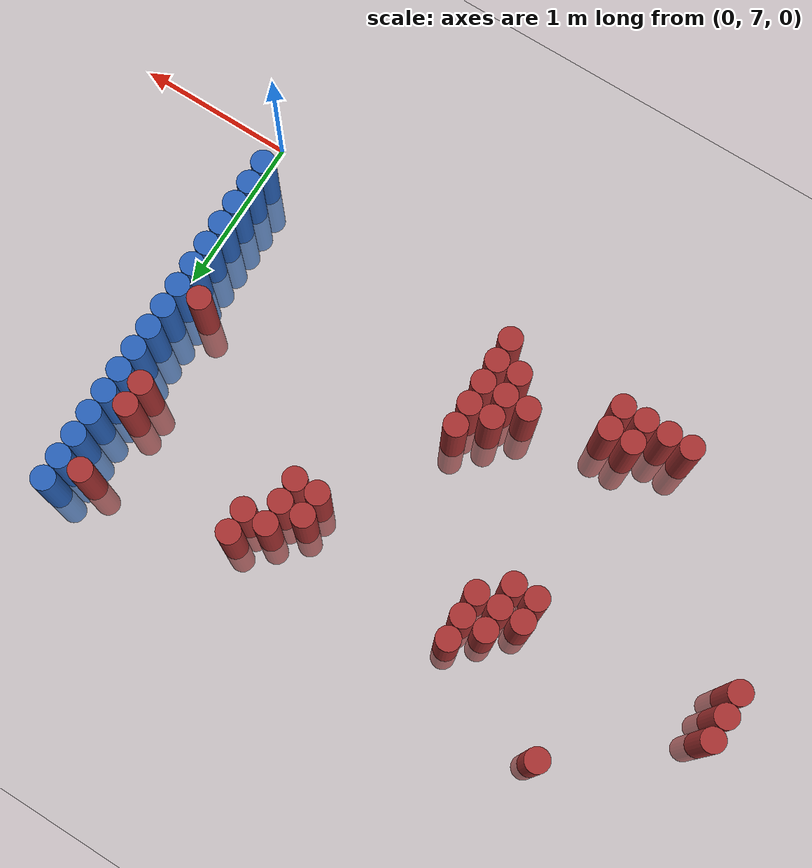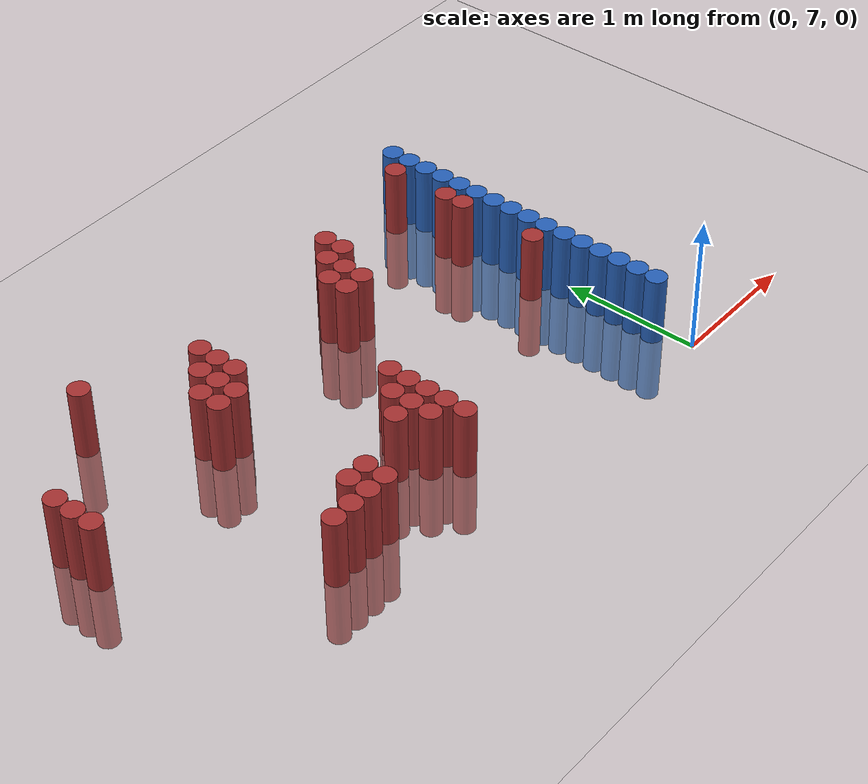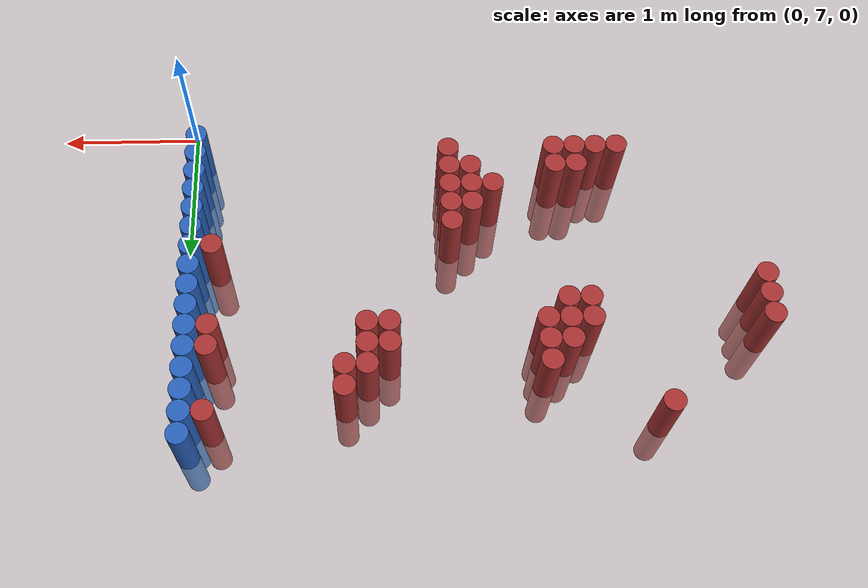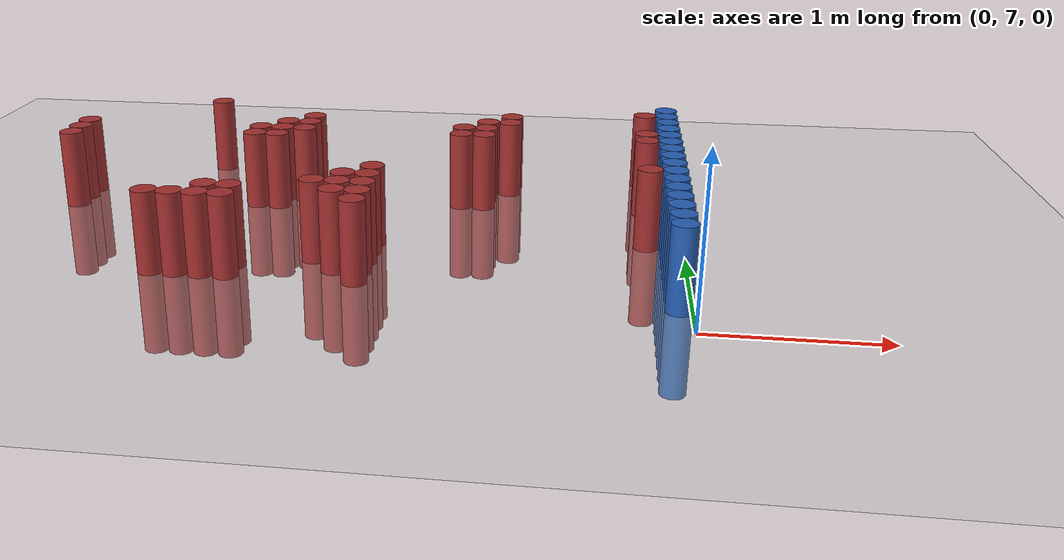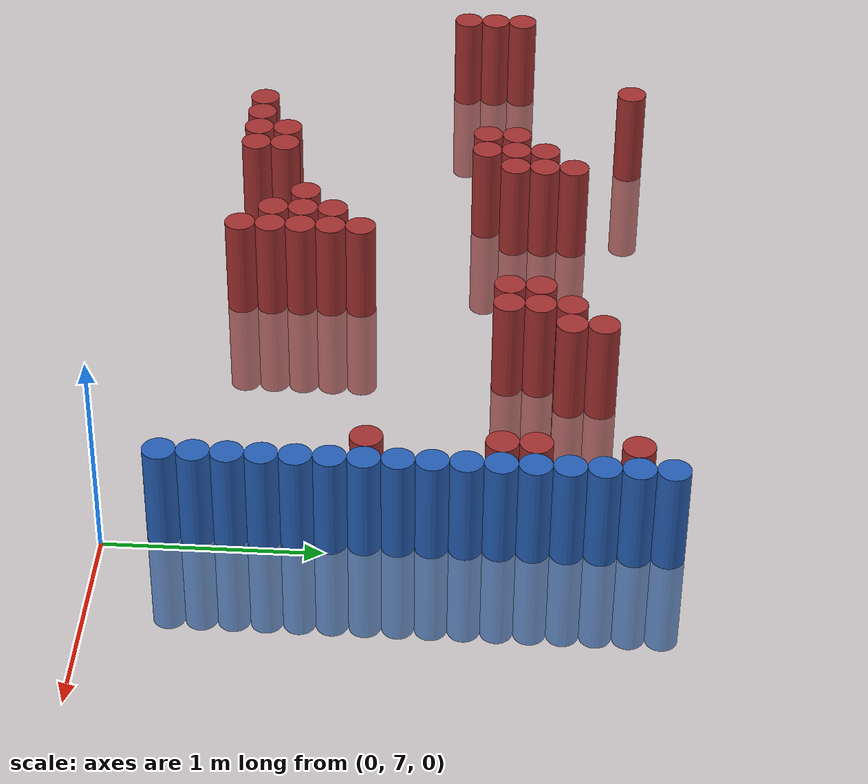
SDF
<sdf version="1.6">
 <world name="world_182">
  <model name="ground_plane">
   <static>1</static>
   <link name="link">
    <collision name="collision">
     <geometry><plane><normal>0 0 1</normal><size>100 100</size></plane></geometry>
     <surface><friction><ode><mu>100</mu><mu2>50</mu2></ode></friction></surface>
    </collision>
    <visual name="visual">
     <cast_shadows>0</cast_shadows>
     <geometry><plane><normal>0 0 1</normal><size>100 100</size></plane></geometry>
     <material>
      <script><uri>file://media/materials/scripts/gazebo.material</uri><name>Gazebo/Grey</name></script>
     </material>
    </visual>
   </link>
  </model>
  <model name="unit_cylinder_160">
   <static>1</static>
   <pose>-3.975000 8.475000 0.000000 0.000000 0.000000 0.000000</pose>
   <link name="link">
    <inertial>
     <mass>1</mass>
     <inertia><ixx>0.145833</ixx><ixy>0</ixy><ixz>0</ixz><iyy>0.145833</iyy><iyz>0</iyz><izz>0.125</izz></inertia>
    </inertial>
    <collision name="collision">
     <geometry><cylinder><radius>0.075000</radius><length>1</length></cylinder></geometry>
    </collision>
    <visual name="visual">
     <geometry><cylinder><radius>0.075000</radius><length>1</length></cylinder></geometry>
     <material>
      <ambient>0.648000 0.192000 0.192000 1</ambient>
      <diffuse>0.648000 0.192000 0.192000 1</diffuse>
     </material>
     <material>
      <script><name>Gazebo/Grey</name><uri>file://media/materials/scripts/gazebo.material</uri></script>
     </material>
    </visual>
   </link>
  </model>
  <model name="unit_cylinder_161">
   <static>1</static>
   <pose>-3.975000 8.625000 0.000000 0.000000 0.000000 0.000000</pose>
   <link name="link">
    <inertial>
     <mass>1</mass>
     <inertia><ixx>0.145833</ixx><ixy>0</ixy><ixz>0</ixz><iyy>0.145833</iyy><iyz>0</iyz><izz>0.125</izz></inertia>
    </inertial>
    <collision name="collision">
     <geometry><cylinder><radius>0.075000</radius><length>1</length></cylinder></geometry>
    </collision>
    <visual name="visual">
     <geometry><cylinder><radius>0.075000</radius><length>1</length></cylinder></geometry>
     <material>
      <ambient>0.648000 0.192000 0.192000 1</ambient>
      <diffuse>0.648000 0.192000 0.192000 1</diffuse>
     </material>
     <material>
      <script><name>Gazebo/Grey</name><uri>file://media/materials/scripts/gazebo.material</uri></script>
     </material>
    </visual>
   </link>
  </model>
  <model name="unit_cylinder_162">
   <static>1</static>
   <pose>-3.975000 8.775000 0.000000 0.000000 0.000000 0.000000</pose>
   <link name="link">
    <inertial>
     <mass>1</mass>
     <inertia><ixx>0.145833</ixx><ixy>0</ixy><ixz>0</ixz><iyy>0.145833</iyy><iyz>0</iyz><izz>0.125</izz></inertia>
    </inertial>
    <collision name="collision">
     <geometry><cylinder><radius>0.075000</radius><length>1</length></cylinder></geometry>
    </collision>
    <visual name="visual">
     <geometry><cylinder><radius>0.075000</radius><length>1</length></cylinder></geometry>
     <material>
      <ambient>0.648000 0.192000 0.192000 1</ambient>
      <diffuse>0.648000 0.192000 0.192000 1</diffuse>
     </material>
     <material>
      <script><name>Gazebo/Grey</name><uri>file://media/materials/scripts/gazebo.material</uri></script>
     </material>
    </visual>
   </link>
  </model>
  <model name="unit_cylinder_171">
   <static>1</static>
   <pose>-3.225000 9.375000 0.000000 0.000000 0.000000 0.000000</pose>
   <link name="link">
    <inertial>
     <mass>1</mass>
     <inertia><ixx>0.145833</ixx><ixy>0</ixy><ixz>0</ixz><iyy>0.145833</iyy><iyz>0</iyz><izz>0.125</izz></inertia>
    </inertial>
    <collision name="collision">
     <geometry><cylinder><radius>0.075000</radius><length>1</length></cylinder></geometry>
    </collision>
    <visual name="visual">
     <geometry><cylinder><radius>0.075000</radius><length>1</length></cylinder></geometry>
     <material>
      <ambient>0.648000 0.192000 0.192000 1</ambient>
      <diffuse>0.648000 0.192000 0.192000 1</diffuse>
     </material>
     <material>
      <script><name>Gazebo/Grey</name><uri>file://media/materials/scripts/gazebo.material</uri></script>
     </material>
    </visual>
   </link>
  </model>
  <model name="unit_cylinder_177">
   <static>1</static>
   <pose>-3.075000 7.425000 0.000000 0.000000 0.000000 0.000000</pose>
   <link name="link">
    <inertial>
     <mass>1</mass>
     <inertia><ixx>0.145833</ixx><ixy>0</ixy><ixz>0</ixz><iyy>0.145833</iyy><iyz>0</iyz><izz>0.125</izz></inertia>
    </inertial>
    <collision name="collision">
     <geometry><cylinder><radius>0.075000</radius><length>1</length></cylinder></geometry>
    </collision>
    <visual name="visual">
     <geometry><cylinder><radius>0.075000</radius><length>1</length></cylinder></geometry>
     <material>
      <ambient>0.648000 0.192000 0.192000 1</ambient>
      <diffuse>0.648000 0.192000 0.192000 1</diffuse>
     </material>
     <material>
      <script><name>Gazebo/Grey</name><uri>file://media/materials/scripts/gazebo.material</uri></script>
     </material>
    </visual>
   </link>
  </model>
  <model name="unit_cylinder_181">
   <static>1</static>
   <pose>-2.925000 7.425000 0.000000 0.000000 0.000000 0.000000</pose>
   <link name="link">
    <inertial>
     <mass>1</mass>
     <inertia><ixx>0.145833</ixx><ixy>0</ixy><ixz>0</ixz><iyy>0.145833</iyy><iyz>0</iyz><izz>0.125</izz></inertia>
    </inertial>
    <collision name="collision">
     <geometry><cylinder><radius>0.075000</radius><length>1</length></cylinder></geometry>
    </collision>
    <visual name="visual">
     <geometry><cylinder><radius>0.075000</radius><length>1</length></cylinder></geometry>
     <material>
      <ambient>0.648000 0.192000 0.192000 1</ambient>
      <diffuse>0.648000 0.192000 0.192000 1</diffuse>
     </material>
     <material>
      <script><name>Gazebo/Grey</name><uri>file://media/materials/scripts/gazebo.material</uri></script>
     </material>
    </visual>
   </link>
  </model>
  <model name="unit_cylinder_183">
   <static>1</static>
   <pose>-2.775000 7.425000 0.000000 0.000000 0.000000 0.000000</pose>
   <link name="link">
    <inertial>
     <mass>1</mass>
     <inertia><ixx>0.145833</ixx><ixy>0</ixy><ixz>0</ixz><iyy>0.145833</iyy><iyz>0</iyz><izz>0.125</izz></inertia>
    </inertial>
    <collision name="collision">
     <geometry><cylinder><radius>0.075000</radius><length>1</length></cylinder></geometry>
    </collision>
    <visual name="visual">
     <geometry><cylinder><radius>0.075000</radius><length>1</length></cylinder></geometry>
     <material>
      <ambient>0.648000 0.192000 0.192000 1</ambient>
      <diffuse>0.648000 0.192000 0.192000 1</diffuse>
     </material>
     <material>
      <script><name>Gazebo/Grey</name><uri>file://media/materials/scripts/gazebo.material</uri></script>
     </material>
    </visual>
   </link>
  </model>
  <model name="unit_cylinder_184">
   <static>1</static>
   <pose>-2.775000 7.575000 0.000000 0.000000 0.000000 0.000000</pose>
   <link name="link">
    <inertial>
     <mass>1</mass>
     <inertia><ixx>0.145833</ixx><ixy>0</ixy><ixz>0</ixz><iyy>0.145833</iyy><iyz>0</iyz><izz>0.125</izz></inertia>
    </inertial>
    <collision name="collision">
     <geometry><cylinder><radius>0.075000</radius><length>1</length></cylinder></geometry>
    </collision>
    <visual name="visual">
     <geometry><cylinder><radius>0.075000</radius><length>1</length></cylinder></geometry>
     <material>
      <ambient>0.648000 0.192000 0.192000 1</ambient>
      <diffuse>0.648000 0.192000 0.192000 1</diffuse>
     </material>
     <material>
      <script><name>Gazebo/Grey</name><uri>file://media/materials/scripts/gazebo.material</uri></script>
     </material>
    </visual>
   </link>
  </model>
  <model name="unit_cylinder_185">
   <static>1</static>
   <pose>-2.775000 8.625000 0.000000 0.000000 0.000000 0.000000</pose>
   <link name="link">
    <inertial>
     <mass>1</mass>
     <inertia><ixx>0.145833</ixx><ixy>0</ixy><ixz>0</ixz><iyy>0.145833</iyy><iyz>0</iyz><izz>0.125</izz></inertia>
    </inertial>
    <collision name="collision">
     <geometry><cylinder><radius>0.075000</radius><length>1</length></cylinder></geometry>
    </collision>
    <visual name="visual">
     <geometry><cylinder><radius>0.075000</radius><length>1</length></cylinder></geometry>
     <material>
      <ambient>0.648000 0.192000 0.192000 1</ambient>
      <diffuse>0.648000 0.192000 0.192000 1</diffuse>
     </material>
     <material>
      <script><name>Gazebo/Grey</name><uri>file://media/materials/scripts/gazebo.material</uri></script>
     </material>
    </visual>
   </link>
  </model>
  <model name="unit_cylinder_186">
   <static>1</static>
   <pose>-2.775000 8.775000 0.000000 0.000000 0.000000 0.000000</pose>
   <link name="link">
    <inertial>
     <mass>1</mass>
     <inertia><ixx>0.145833</ixx><ixy>0</ixy><ixz>0</ixz><iyy>0.145833</iyy><iyz>0</iyz><izz>0.125</izz></inertia>
    </inertial>
    <collision name="collision">
     <geometry><cylinder><radius>0.075000</radius><length>1</length></cylinder></geometry>
    </collision>
    <visual name="visual">
     <geometry><cylinder><radius>0.075000</radius><length>1</length></cylinder></geometry>
     <material>
      <ambient>0.648000 0.192000 0.192000 1</ambient>
      <diffuse>0.648000 0.192000 0.192000 1</diffuse>
     </material>
     <material>
      <script><name>Gazebo/Grey</name><uri>file://media/materials/scripts/gazebo.material</uri></script>
     </material>
    </visual>
   </link>
  </model>
  <model name="unit_cylinder_187">
   <static>1</static>
   <pose>-2.625000 7.425000 0.000000 0.000000 0.000000 0.000000</pose>
   <link name="link">
    <inertial>
     <mass>1</mass>
     <inertia><ixx>0.145833</ixx><ixy>0</ixy><ixz>0</ixz><iyy>0.145833</iyy><iyz>0</iyz><izz>0.125</izz></inertia>
    </inertial>
    <collision name="collision">
     <geometry><cylinder><radius>0.075000</radius><length>1</length></cylinder></geometry>
    </collision>
    <visual name="visual">
     <geometry><cylinder><radius>0.075000</radius><length>1</length></cylinder></geometry>
     <material>
      <ambient>0.648000 0.192000 0.192000 1</ambient>
      <diffuse>0.648000 0.192000 0.192000 1</diffuse>
     </material>
     <material>
      <script><name>Gazebo/Grey</name><uri>file://media/materials/scripts/gazebo.material</uri></script>
     </material>
    </visual>
   </link>
  </model>
  <model name="unit_cylinder_188">
   <static>1</static>
   <pose>-2.625000 7.575000 0.000000 0.000000 0.000000 0.000000</pose>
   <link name="link">
    <inertial>
     <mass>1</mass>
     <inertia><ixx>0.145833</ixx><ixy>0</ixy><ixz>0</ixz><iyy>0.145833</iyy><iyz>0</iyz><izz>0.125</izz></inertia>
    </inertial>
    <collision name="collision">
     <geometry><cylinder><radius>0.075000</radius><length>1</length></cylinder></geometry>
    </collision>
    <visual name="visual">
     <geometry><cylinder><radius>0.075000</radius><length>1</length></cylinder></geometry>
     <material>
      <ambient>0.648000 0.192000 0.192000 1</ambient>
      <diffuse>0.648000 0.192000 0.192000 1</diffuse>
     </material>
     <material>
      <script><name>Gazebo/Grey</name><uri>file://media/materials/scripts/gazebo.material</uri></script>
     </material>
    </visual>
   </link>
  </model>
  <model name="unit_cylinder_189">
   <static>1</static>
   <pose>-2.625000 8.625000 0.000000 0.000000 0.000000 0.000000</pose>
   <link name="link">
    <inertial>
     <mass>1</mass>
     <inertia><ixx>0.145833</ixx><ixy>0</ixy><ixz>0</ixz><iyy>0.145833</iyy><iyz>0</iyz><izz>0.125</izz></inertia>
    </inertial>
    <collision name="collision">
     <geometry><cylinder><radius>0.075000</radius><length>1</length></cylinder></geometry>
    </collision>
    <visual name="visual">
     <geometry><cylinder><radius>0.075000</radius><length>1</length></cylinder></geometry>
     <material>
      <ambient>0.648000 0.192000 0.192000 1</ambient>
      <diffuse>0.648000 0.192000 0.192000 1</diffuse>
     </material>
     <material>
      <script><name>Gazebo/Grey</name><uri>file://media/materials/scripts/gazebo.material</uri></script>
     </material>
    </visual>
   </link>
  </model>
  <model name="unit_cylinder_190">
   <static>1</static>
   <pose>-2.625000 8.775000 0.000000 0.000000 0.000000 0.000000</pose>
   <link name="link">
    <inertial>
     <mass>1</mass>
     <inertia><ixx>0.145833</ixx><ixy>0</ixy><ixz>0</ixz><iyy>0.145833</iyy><iyz>0</iyz><izz>0.125</izz></inertia>
    </inertial>
    <collision name="collision">
     <geometry><cylinder><radius>0.075000</radius><length>1</length></cylinder></geometry>
    </collision>
    <visual name="visual">
     <geometry><cylinder><radius>0.075000</radius><length>1</length></cylinder></geometry>
     <material>
      <ambient>0.648000 0.192000 0.192000 1</ambient>
      <diffuse>0.648000 0.192000 0.192000 1</diffuse>
     </material>
     <material>
      <script><name>Gazebo/Grey</name><uri>file://media/materials/scripts/gazebo.material</uri></script>
     </material>
    </visual>
   </link>
  </model>
  <model name="unit_cylinder_191">
   <static>1</static>
   <pose>-2.625000 8.925000 0.000000 0.000000 0.000000 0.000000</pose>
   <link name="link">
    <inertial>
     <mass>1</mass>
     <inertia><ixx>0.145833</ixx><ixy>0</ixy><ixz>0</ixz><iyy>0.145833</iyy><iyz>0</iyz><izz>0.125</izz></inertia>
    </inertial>
    <collision name="collision">
     <geometry><cylinder><radius>0.075000</radius><length>1</length></cylinder></geometry>
    </collision>
    <visual name="visual">
     <geometry><cylinder><radius>0.075000</radius><length>1</length></cylinder></geometry>
     <material>
      <ambient>0.648000 0.192000 0.192000 1</ambient>
      <diffuse>0.648000 0.192000 0.192000 1</diffuse>
     </material>
     <material>
      <script><name>Gazebo/Grey</name><uri>file://media/materials/scripts/gazebo.material</uri></script>
     </material>
    </visual>
   </link>
  </model>
  <model name="unit_cylinder_192">
   <static>1</static>
   <pose>-2.475000 8.775000 0.000000 0.000000 0.000000 0.000000</pose>
   <link name="link">
    <inertial>
     <mass>1</mass>
     <inertia><ixx>0.145833</ixx><ixy>0</ixy><ixz>0</ixz><iyy>0.145833</iyy><iyz>0</iyz><izz>0.125</izz></inertia>
    </inertial>
    <collision name="collision">
     <geometry><cylinder><radius>0.075000</radius><length>1</length></cylinder></geometry>
    </collision>
    <visual name="visual">
     <geometry><cylinder><radius>0.075000</radius><length>1</length></cylinder></geometry>
     <material>
      <ambient>0.648000 0.192000 0.192000 1</ambient>
      <diffuse>0.648000 0.192000 0.192000 1</diffuse>
     </material>
     <material>
      <script><name>Gazebo/Grey</name><uri>file://media/materials/scripts/gazebo.material</uri></script>
     </material>
    </visual>
   </link>
  </model>
  <model name="unit_cylinder_193">
   <static>1</static>
   <pose>-2.475000 8.925000 0.000000 0.000000 0.000000 0.000000</pose>
   <link name="link">
    <inertial>
     <mass>1</mass>
     <inertia><ixx>0.145833</ixx><ixy>0</ixy><ixz>0</ixz><iyy>0.145833</iyy><iyz>0</iyz><izz>0.125</izz></inertia>
    </inertial>
    <collision name="collision">
     <geometry><cylinder><radius>0.075000</radius><length>1</length></cylinder></geometry>
    </collision>
    <visual name="visual">
     <geometry><cylinder><radius>0.075000</radius><length>1</length></cylinder></geometry>
     <material>
      <ambient>0.648000 0.192000 0.192000 1</ambient>
      <diffuse>0.648000 0.192000 0.192000 1</diffuse>
     </material>
     <material>
      <script><name>Gazebo/Grey</name><uri>file://media/materials/scripts/gazebo.material</uri></script>
     </material>
    </visual>
   </link>
  </model>
  <model name="unit_cylinder_194">
   <static>1</static>
   <pose>-2.475000 9.075000 0.000000 0.000000 0.000000 0.000000</pose>
   <link name="link">
    <inertial>
     <mass>1</mass>
     <inertia><ixx>0.145833</ixx><ixy>0</ixy><ixz>0</ixz><iyy>0.145833</iyy><iyz>0</iyz><izz>0.125</izz></inertia>
    </inertial>
    <collision name="collision">
     <geometry><cylinder><radius>0.075000</radius><length>1</length></cylinder></geometry>
    </collision>
    <visual name="visual">
     <geometry><cylinder><radius>0.075000</radius><length>1</length></cylinder></geometry>
     <material>
      <ambient>0.648000 0.192000 0.192000 1</ambient>
      <diffuse>0.648000 0.192000 0.192000 1</diffuse>
     </material>
     <material>
      <script><name>Gazebo/Grey</name><uri>file://media/materials/scripts/gazebo.material</uri></script>
     </material>
    </visual>
   </link>
  </model>
  <model name="unit_cylinder_196">
   <static>1</static>
   <pose>-2.175000 7.725000 0.000000 0.000000 0.000000 0.000000</pose>
   <link name="link">
    <inertial>
     <mass>1</mass>
     <inertia><ixx>0.145833</ixx><ixy>0</ixy><ixz>0</ixz><iyy>0.145833</iyy><iyz>0</iyz><izz>0.125</izz></inertia>
    </inertial>
    <collision name="collision">
     <geometry><cylinder><radius>0.075000</radius><length>1</length></cylinder></geometry>
    </collision>
    <visual name="visual">
     <geometry><cylinder><radius>0.075000</radius><length>1</length></cylinder></geometry>
     <material>
      <ambient>0.648000 0.192000 0.192000 1</ambient>
      <diffuse>0.648000 0.192000 0.192000 1</diffuse>
     </material>
     <material>
      <script><name>Gazebo/Grey</name><uri>file://media/materials/scripts/gazebo.material</uri></script>
     </material>
    </visual>
   </link>
  </model>
  <model name="unit_cylinder_202">
   <static>1</static>
   <pose>-2.025000 7.575000 0.000000 0.000000 0.000000 0.000000</pose>
   <link name="link">
    <inertial>
     <mass>1</mass>
     <inertia><ixx>0.145833</ixx><ixy>0</ixy><ixz>0</ixz><iyy>0.145833</iyy><iyz>0</iyz><izz>0.125</izz></inertia>
    </inertial>
    <collision name="collision">
     <geometry><cylinder><radius>0.075000</radius><length>1</length></cylinder></geometry>
    </collision>
    <visual name="visual">
     <geometry><cylinder><radius>0.075000</radius><length>1</length></cylinder></geometry>
     <material>
      <ambient>0.648000 0.192000 0.192000 1</ambient>
      <diffuse>0.648000 0.192000 0.192000 1</diffuse>
     </material>
     <material>
      <script><name>Gazebo/Grey</name><uri>file://media/materials/scripts/gazebo.material</uri></script>
     </material>
    </visual>
   </link>
  </model>
  <model name="unit_cylinder_203">
   <static>1</static>
   <pose>-2.025000 7.725000 0.000000 0.000000 0.000000 0.000000</pose>
   <link name="link">
    <inertial>
     <mass>1</mass>
     <inertia><ixx>0.145833</ixx><ixy>0</ixy><ixz>0</ixz><iyy>0.145833</iyy><iyz>0</iyz><izz>0.125</izz></inertia>
    </inertial>
    <collision name="collision">
     <geometry><cylinder><radius>0.075000</radius><length>1</length></cylinder></geometry>
    </collision>
    <visual name="visual">
     <geometry><cylinder><radius>0.075000</radius><length>1</length></cylinder></geometry>
     <material>
      <ambient>0.648000 0.192000 0.192000 1</ambient>
      <diffuse>0.648000 0.192000 0.192000 1</diffuse>
     </material>
     <material>
      <script><name>Gazebo/Grey</name><uri>file://media/materials/scripts/gazebo.material</uri></script>
     </material>
    </visual>
   </link>
  </model>
  <model name="unit_cylinder_204">
   <static>1</static>
   <pose>-2.025000 7.875000 0.000000 0.000000 0.000000 0.000000</pose>
   <link name="link">
    <inertial>
     <mass>1</mass>
     <inertia><ixx>0.145833</ixx><ixy>0</ixy><ixz>0</ixz><iyy>0.145833</iyy><iyz>0</iyz><izz>0.125</izz></inertia>
    </inertial>
    <collision name="collision">
     <geometry><cylinder><radius>0.075000</radius><length>1</length></cylinder></geometry>
    </collision>
    <visual name="visual">
     <geometry><cylinder><radius>0.075000</radius><length>1</length></cylinder></geometry>
     <material>
      <ambient>0.648000 0.192000 0.192000 1</ambient>
      <diffuse>0.648000 0.192000 0.192000 1</diffuse>
     </material>
     <material>
      <script><name>Gazebo/Grey</name><uri>file://media/materials/scripts/gazebo.material</uri></script>
     </material>
    </visual>
   </link>
  </model>
  <model name="unit_cylinder_208">
   <static>1</static>
   <pose>-1.875000 7.425000 0.000000 0.000000 0.000000 0.000000</pose>
   <link name="link">
    <inertial>
     <mass>1</mass>
     <inertia><ixx>0.145833</ixx><ixy>0</ixy><ixz>0</ixz><iyy>0.145833</iyy><iyz>0</iyz><izz>0.125</izz></inertia>
    </inertial>
    <collision name="collision">
     <geometry><cylinder><radius>0.075000</radius><length>1</length></cylinder></geometry>
    </collision>
    <visual name="visual">
     <geometry><cylinder><radius>0.075000</radius><length>1</length></cylinder></geometry>
     <material>
      <ambient>0.648000 0.192000 0.192000 1</ambient>
      <diffuse>0.648000 0.192000 0.192000 1</diffuse>
     </material>
     <material>
      <script><name>Gazebo/Grey</name><uri>file://media/materials/scripts/gazebo.material</uri></script>
     </material>
    </visual>
   </link>
  </model>
  <model name="unit_cylinder_209">
   <static>1</static>
   <pose>-1.875000 7.575000 0.000000 0.000000 0.000000 0.000000</pose>
   <link name="link">
    <inertial>
     <mass>1</mass>
     <inertia><ixx>0.145833</ixx><ixy>0</ixy><ixz>0</ixz><iyy>0.145833</iyy><iyz>0</iyz><izz>0.125</izz></inertia>
    </inertial>
    <collision name="collision">
     <geometry><cylinder><radius>0.075000</radius><length>1</length></cylinder></geometry>
    </collision>
    <visual name="visual">
     <geometry><cylinder><radius>0.075000</radius><length>1</length></cylinder></geometry>
     <material>
      <ambient>0.648000 0.192000 0.192000 1</ambient>
      <diffuse>0.648000 0.192000 0.192000 1</diffuse>
     </material>
     <material>
      <script><name>Gazebo/Grey</name><uri>file://media/materials/scripts/gazebo.material</uri></script>
     </material>
    </visual>
   </link>
  </model>
  <model name="unit_cylinder_210">
   <static>1</static>
   <pose>-1.875000 7.725000 0.000000 0.000000 0.000000 0.000000</pose>
   <link name="link">
    <inertial>
     <mass>1</mass>
     <inertia><ixx>0.145833</ixx><ixy>0</ixy><ixz>0</ixz><iyy>0.145833</iyy><iyz>0</iyz><izz>0.125</izz></inertia>
    </inertial>
    <collision name="collision">
     <geometry><cylinder><radius>0.075000</radius><length>1</length></cylinder></geometry>
    </collision>
    <visual name="visual">
     <geometry><cylinder><radius>0.075000</radius><length>1</length></cylinder></geometry>
     <material>
      <ambient>0.648000 0.192000 0.192000 1</ambient>
      <diffuse>0.648000 0.192000 0.192000 1</diffuse>
     </material>
     <material>
      <script><name>Gazebo/Grey</name><uri>file://media/materials/scripts/gazebo.material</uri></script>
     </material>
    </visual>
   </link>
  </model>
  <model name="unit_cylinder_211">
   <static>1</static>
   <pose>-1.875000 7.875000 0.000000 0.000000 0.000000 0.000000</pose>
   <link name="link">
    <inertial>
     <mass>1</mass>
     <inertia><ixx>0.145833</ixx><ixy>0</ixy><ixz>0</ixz><iyy>0.145833</iyy><iyz>0</iyz><izz>0.125</izz></inertia>
    </inertial>
    <collision name="collision">
     <geometry><cylinder><radius>0.075000</radius><length>1</length></cylinder></geometry>
    </collision>
    <visual name="visual">
     <geometry><cylinder><radius>0.075000</radius><length>1</length></cylinder></geometry>
     <material>
      <ambient>0.648000 0.192000 0.192000 1</ambient>
      <diffuse>0.648000 0.192000 0.192000 1</diffuse>
     </material>
     <material>
      <script><name>Gazebo/Grey</name><uri>file://media/materials/scripts/gazebo.material</uri></script>
     </material>
    </visual>
   </link>
  </model>
  <model name="unit_cylinder_212">
   <static>1</static>
   <pose>-1.875000 8.025000 0.000000 0.000000 0.000000 0.000000</pose>
   <link name="link">
    <inertial>
     <mass>1</mass>
     <inertia><ixx>0.145833</ixx><ixy>0</ixy><ixz>0</ixz><iyy>0.145833</iyy><iyz>0</iyz><izz>0.125</izz></inertia>
    </inertial>
    <collision name="collision">
     <geometry><cylinder><radius>0.075000</radius><length>1</length></cylinder></geometry>
    </collision>
    <visual name="visual">
     <geometry><cylinder><radius>0.075000</radius><length>1</length></cylinder></geometry>
     <material>
      <ambient>0.648000 0.192000 0.192000 1</ambient>
      <diffuse>0.648000 0.192000 0.192000 1</diffuse>
     </material>
     <material>
      <script><name>Gazebo/Grey</name><uri>file://media/materials/scripts/gazebo.material</uri></script>
     </material>
    </visual>
   </link>
  </model>
  <model name="unit_cylinder_214">
   <static>1</static>
   <pose>-1.425000 8.775000 0.000000 0.000000 0.000000 0.000000</pose>
   <link name="link">
    <inertial>
     <mass>1</mass>
     <inertia><ixx>0.145833</ixx><ixy>0</ixy><ixz>0</ixz><iyy>0.145833</iyy><iyz>0</iyz><izz>0.125</izz></inertia>
    </inertial>
    <collision name="collision">
     <geometry><cylinder><radius>0.075000</radius><length>1</length></cylinder></geometry>
    </collision>
    <visual name="visual">
     <geometry><cylinder><radius>0.075000</radius><length>1</length></cylinder></geometry>
     <material>
      <ambient>0.648000 0.192000 0.192000 1</ambient>
      <diffuse>0.648000 0.192000 0.192000 1</diffuse>
     </material>
     <material>
      <script><name>Gazebo/Grey</name><uri>file://media/materials/scripts/gazebo.material</uri></script>
     </material>
    </visual>
   </link>
  </model>
  <model name="unit_cylinder_215">
   <static>1</static>
   <pose>-1.425000 8.925000 0.000000 0.000000 0.000000 0.000000</pose>
   <link name="link">
    <inertial>
     <mass>1</mass>
     <inertia><ixx>0.145833</ixx><ixy>0</ixy><ixz>0</ixz><iyy>0.145833</iyy><iyz>0</iyz><izz>0.125</izz></inertia>
    </inertial>
    <collision name="collision">
     <geometry><cylinder><radius>0.075000</radius><length>1</length></cylinder></geometry>
    </collision>
    <visual name="visual">
     <geometry><cylinder><radius>0.075000</radius><length>1</length></cylinder></geometry>
     <material>
      <ambient>0.648000 0.192000 0.192000 1</ambient>
      <diffuse>0.648000 0.192000 0.192000 1</diffuse>
     </material>
     <material>
      <script><name>Gazebo/Grey</name><uri>file://media/materials/scripts/gazebo.material</uri></script>
     </material>
    </visual>
   </link>
  </model>
  <model name="unit_cylinder_216">
   <static>1</static>
   <pose>-1.275000 8.775000 0.000000 0.000000 0.000000 0.000000</pose>
   <link name="link">
    <inertial>
     <mass>1</mass>
     <inertia><ixx>0.145833</ixx><ixy>0</ixy><ixz>0</ixz><iyy>0.145833</iyy><iyz>0</iyz><izz>0.125</izz></inertia>
    </inertial>
    <collision name="collision">
     <geometry><cylinder><radius>0.075000</radius><length>1</length></cylinder></geometry>
    </collision>
    <visual name="visual">
     <geometry><cylinder><radius>0.075000</radius><length>1</length></cylinder></geometry>
     <material>
      <ambient>0.648000 0.192000 0.192000 1</ambient>
      <diffuse>0.648000 0.192000 0.192000 1</diffuse>
     </material>
     <material>
      <script><name>Gazebo/Grey</name><uri>file://media/materials/scripts/gazebo.material</uri></script>
     </material>
    </visual>
   </link>
  </model>
  <model name="unit_cylinder_217">
   <static>1</static>
   <pose>-1.275000 8.925000 0.000000 0.000000 0.000000 0.000000</pose>
   <link name="link">
    <inertial>
     <mass>1</mass>
     <inertia><ixx>0.145833</ixx><ixy>0</ixy><ixz>0</ixz><iyy>0.145833</iyy><iyz>0</iyz><izz>0.125</izz></inertia>
    </inertial>
    <collision name="collision">
     <geometry><cylinder><radius>0.075000</radius><length>1</length></cylinder></geometry>
    </collision>
    <visual name="visual">
     <geometry><cylinder><radius>0.075000</radius><length>1</length></cylinder></geometry>
     <material>
      <ambient>0.648000 0.192000 0.192000 1</ambient>
      <diffuse>0.648000 0.192000 0.192000 1</diffuse>
     </material>
     <material>
      <script><name>Gazebo/Grey</name><uri>file://media/materials/scripts/gazebo.material</uri></script>
     </material>
    </visual>
   </link>
  </model>
  <model name="unit_cylinder_218">
   <static>1</static>
   <pose>-1.275000 9.075000 0.000000 0.000000 0.000000 0.000000</pose>
   <link name="link">
    <inertial>
     <mass>1</mass>
     <inertia><ixx>0.145833</ixx><ixy>0</ixy><ixz>0</ixz><iyy>0.145833</iyy><iyz>0</iyz><izz>0.125</izz></inertia>
    </inertial>
    <collision name="collision">
     <geometry><cylinder><radius>0.075000</radius><length>1</length></cylinder></geometry>
    </collision>
    <visual name="visual">
     <geometry><cylinder><radius>0.075000</radius><length>1</length></cylinder></geometry>
     <material>
      <ambient>0.648000 0.192000 0.192000 1</ambient>
      <diffuse>0.648000 0.192000 0.192000 1</diffuse>
     </material>
     <material>
      <script><name>Gazebo/Grey</name><uri>file://media/materials/scripts/gazebo.material</uri></script>
     </material>
    </visual>
   </link>
  </model>
  <model name="unit_cylinder_219">
   <static>1</static>
   <pose>-1.125000 9.075000 0.000000 0.000000 0.000000 0.000000</pose>
   <link name="link">
    <inertial>
     <mass>1</mass>
     <inertia><ixx>0.145833</ixx><ixy>0</ixy><ixz>0</ixz><iyy>0.145833</iyy><iyz>0</iyz><izz>0.125</izz></inertia>
    </inertial>
    <collision name="collision">
     <geometry><cylinder><radius>0.075000</radius><length>1</length></cylinder></geometry>
    </collision>
    <visual name="visual">
     <geometry><cylinder><radius>0.075000</radius><length>1</length></cylinder></geometry>
     <material>
      <ambient>0.648000 0.192000 0.192000 1</ambient>
      <diffuse>0.648000 0.192000 0.192000 1</diffuse>
     </material>
     <material>
      <script><name>Gazebo/Grey</name><uri>file://media/materials/scripts/gazebo.material</uri></script>
     </material>
    </visual>
   </link>
  </model>
  <model name="unit_cylinder_220">
   <static>1</static>
   <pose>-1.125000 9.225000 0.000000 0.000000 0.000000 0.000000</pose>
   <link name="link">
    <inertial>
     <mass>1</mass>
     <inertia><ixx>0.145833</ixx><ixy>0</ixy><ixz>0</ixz><iyy>0.145833</iyy><iyz>0</iyz><izz>0.125</izz></inertia>
    </inertial>
    <collision name="collision">
     <geometry><cylinder><radius>0.075000</radius><length>1</length></cylinder></geometry>
    </collision>
    <visual name="visual">
     <geometry><cylinder><radius>0.075000</radius><length>1</length></cylinder></geometry>
     <material>
      <ambient>0.648000 0.192000 0.192000 1</ambient>
      <diffuse>0.648000 0.192000 0.192000 1</diffuse>
     </material>
     <material>
      <script><name>Gazebo/Grey</name><uri>file://media/materials/scripts/gazebo.material</uri></script>
     </material>
    </visual>
   </link>
  </model>
  <model name="unit_cylinder_236">
   <static>1</static>
   <pose>-0.225000 8.175000 0.000000 0.000000 0.000000 0.000000</pose>
   <link name="link">
    <inertial>
     <mass>1</mass>
     <inertia><ixx>0.145833</ixx><ixy>0</ixy><ixz>0</ixz><iyy>0.145833</iyy><iyz>0</iyz><izz>0.125</izz></inertia>
    </inertial>
    <collision name="collision">
     <geometry><cylinder><radius>0.075000</radius><length>1</length></cylinder></geometry>
    </collision>
    <visual name="visual">
     <geometry><cylinder><radius>0.075000</radius><length>1</length></cylinder></geometry>
     <material>
      <ambient>0.648000 0.192000 0.192000 1</ambient>
      <diffuse>0.648000 0.192000 0.192000 1</diffuse>
     </material>
     <material>
      <script><name>Gazebo/Grey</name><uri>file://media/materials/scripts/gazebo.material</uri></script>
     </material>
    </visual>
   </link>
  </model>
  <model name="unit_cylinder_237">
   <static>1</static>
   <pose>-0.225000 8.775000 0.000000 0.000000 0.000000 0.000000</pose>
   <link name="link">
    <inertial>
     <mass>1</mass>
     <inertia><ixx>0.145833</ixx><ixy>0</ixy><ixz>0</ixz><iyy>0.145833</iyy><iyz>0</iyz><izz>0.125</izz></inertia>
    </inertial>
    <collision name="collision">
     <geometry><cylinder><radius>0.075000</radius><length>1</length></cylinder></geometry>
    </collision>
    <visual name="visual">
     <geometry><cylinder><radius>0.075000</radius><length>1</length></cylinder></geometry>
     <material>
      <ambient>0.648000 0.192000 0.192000 1</ambient>
      <diffuse>0.648000 0.192000 0.192000 1</diffuse>
     </material>
     <material>
      <script><name>Gazebo/Grey</name><uri>file://media/materials/scripts/gazebo.material</uri></script>
     </material>
    </visual>
   </link>
  </model>
  <model name="unit_cylinder_238">
   <static>1</static>
   <pose>-0.225000 8.925000 0.000000 0.000000 0.000000 0.000000</pose>
   <link name="link">
    <inertial>
     <mass>1</mass>
     <inertia><ixx>0.145833</ixx><ixy>0</ixy><ixz>0</ixz><iyy>0.145833</iyy><iyz>0</iyz><izz>0.125</izz></inertia>
    </inertial>
    <collision name="collision">
     <geometry><cylinder><radius>0.075000</radius><length>1</length></cylinder></geometry>
    </collision>
    <visual name="visual">
     <geometry><cylinder><radius>0.075000</radius><length>1</length></cylinder></geometry>
     <material>
      <ambient>0.648000 0.192000 0.192000 1</ambient>
      <diffuse>0.648000 0.192000 0.192000 1</diffuse>
     </material>
     <material>
      <script><name>Gazebo/Grey</name><uri>file://media/materials/scripts/gazebo.material</uri></script>
     </material>
    </visual>
   </link>
  </model>
  <model name="unit_cylinder_239">
   <static>1</static>
   <pose>-0.225000 9.375000 0.000000 0.000000 0.000000 0.000000</pose>
   <link name="link">
    <inertial>
     <mass>1</mass>
     <inertia><ixx>0.145833</ixx><ixy>0</ixy><ixz>0</ixz><iyy>0.145833</iyy><iyz>0</iyz><izz>0.125</izz></inertia>
    </inertial>
    <collision name="collision">
     <geometry><cylinder><radius>0.075000</radius><length>1</length></cylinder></geometry>
    </collision>
    <visual name="visual">
     <geometry><cylinder><radius>0.075000</radius><length>1</length></cylinder></geometry>
     <material>
      <ambient>0.648000 0.192000 0.192000 1</ambient>
      <diffuse>0.648000 0.192000 0.192000 1</diffuse>
     </material>
     <material>
      <script><name>Gazebo/Grey</name><uri>file://media/materials/scripts/gazebo.material</uri></script>
     </material>
    </visual>
   </link>
  </model>
  <model name="unit_cylinder_254">
   <static>1</static>
   <pose>-0.075000 7.275000 0.000000 0.000000 0.000000 0.000000</pose>
   <link name="link">
    <inertial>
     <mass>1</mass>
     <inertia><ixx>0.145833</ixx><ixy>0</ixy><ixz>0</ixz><iyy>0.145833</iyy><iyz>0</iyz><izz>0.125</izz></inertia>
    </inertial>
    <collision name="collision">
     <geometry><cylinder><radius>0.075000</radius><length>1</length></cylinder></geometry>
    </collision>
    <visual name="visual">
     <geometry><cylinder><radius>0.075000</radius><length>1</length></cylinder></geometry>
     <material>
      <ambient>0.152000 0.379000 0.720000 1</ambient>
      <diffuse>0.152000 0.379000 0.720000 1</diffuse>
     </material>
     <material>
      <script><name>Gazebo/Grey</name><uri>file://media/materials/scripts/gazebo.material</uri></script>
     </material>
    </visual>
   </link>
  </model>
  <model name="unit_cylinder_255">
   <static>1</static>
   <pose>-0.075000 7.425000 0.000000 0.000000 0.000000 0.000000</pose>
   <link name="link">
    <inertial>
     <mass>1</mass>
     <inertia><ixx>0.145833</ixx><ixy>0</ixy><ixz>0</ixz><iyy>0.145833</iyy><iyz>0</iyz><izz>0.125</izz></inertia>
    </inertial>
    <collision name="collision">
     <geometry><cylinder><radius>0.075000</radius><length>1</length></cylinder></geometry>
    </collision>
    <visual name="visual">
     <geometry><cylinder><radius>0.075000</radius><length>1</length></cylinder></geometry>
     <material>
      <ambient>0.152000 0.379000 0.720000 1</ambient>
      <diffuse>0.152000 0.379000 0.720000 1</diffuse>
     </material>
     <material>
      <script><name>Gazebo/Grey</name><uri>file://media/materials/scripts/gazebo.material</uri></script>
     </material>
    </visual>
   </link>
  </model>
  <model name="unit_cylinder_256">
   <static>1</static>
   <pose>-0.075000 7.575000 0.000000 0.000000 0.000000 0.000000</pose>
   <link name="link">
    <inertial>
     <mass>1</mass>
     <inertia><ixx>0.145833</ixx><ixy>0</ixy><ixz>0</ixz><iyy>0.145833</iyy><iyz>0</iyz><izz>0.125</izz></inertia>
    </inertial>
    <collision name="collision">
     <geometry><cylinder><radius>0.075000</radius><length>1</length></cylinder></geometry>
    </collision>
    <visual name="visual">
     <geometry><cylinder><radius>0.075000</radius><length>1</length></cylinder></geometry>
     <material>
      <ambient>0.152000 0.379000 0.720000 1</ambient>
      <diffuse>0.152000 0.379000 0.720000 1</diffuse>
     </material>
     <material>
      <script><name>Gazebo/Grey</name><uri>file://media/materials/scripts/gazebo.material</uri></script>
     </material>
    </visual>
   </link>
  </model>
  <model name="unit_cylinder_257">
   <static>1</static>
   <pose>-0.075000 7.725000 0.000000 0.000000 0.000000 0.000000</pose>
   <link name="link">
    <inertial>
     <mass>1</mass>
     <inertia><ixx>0.145833</ixx><ixy>0</ixy><ixz>0</ixz><iyy>0.145833</iyy><iyz>0</iyz><izz>0.125</izz></inertia>
    </inertial>
    <collision name="collision">
     <geometry><cylinder><radius>0.075000</radius><length>1</length></cylinder></geometry>
    </collision>
    <visual name="visual">
     <geometry><cylinder><radius>0.075000</radius><length>1</length></cylinder></geometry>
     <material>
      <ambient>0.152000 0.379000 0.720000 1</ambient>
      <diffuse>0.152000 0.379000 0.720000 1</diffuse>
     </material>
     <material>
      <script><name>Gazebo/Grey</name><uri>file://media/materials/scripts/gazebo.material</uri></script>
     </material>
    </visual>
   </link>
  </model>
  <model name="unit_cylinder_258">
   <static>1</static>
   <pose>-0.075000 7.875000 0.000000 0.000000 0.000000 0.000000</pose>
   <link name="link">
    <inertial>
     <mass>1</mass>
     <inertia><ixx>0.145833</ixx><ixy>0</ixy><ixz>0</ixz><iyy>0.145833</iyy><iyz>0</iyz><izz>0.125</izz></inertia>
    </inertial>
    <collision name="collision">
     <geometry><cylinder><radius>0.075000</radius><length>1</length></cylinder></geometry>
    </collision>
    <visual name="visual">
     <geometry><cylinder><radius>0.075000</radius><length>1</length></cylinder></geometry>
     <material>
      <ambient>0.152000 0.379000 0.720000 1</ambient>
      <diffuse>0.152000 0.379000 0.720000 1</diffuse>
     </material>
     <material>
      <script><name>Gazebo/Grey</name><uri>file://media/materials/scripts/gazebo.material</uri></script>
     </material>
    </visual>
   </link>
  </model>
  <model name="unit_cylinder_259">
   <static>1</static>
   <pose>-0.075000 8.025000 0.000000 0.000000 0.000000 0.000000</pose>
   <link name="link">
    <inertial>
     <mass>1</mass>
     <inertia><ixx>0.145833</ixx><ixy>0</ixy><ixz>0</ixz><iyy>0.145833</iyy><iyz>0</iyz><izz>0.125</izz></inertia>
    </inertial>
    <collision name="collision">
     <geometry><cylinder><radius>0.075000</radius><length>1</length></cylinder></geometry>
    </collision>
    <visual name="visual">
     <geometry><cylinder><radius>0.075000</radius><length>1</length></cylinder></geometry>
     <material>
      <ambient>0.152000 0.379000 0.720000 1</ambient>
      <diffuse>0.152000 0.379000 0.720000 1</diffuse>
     </material>
     <material>
      <script><name>Gazebo/Grey</name><uri>file://media/materials/scripts/gazebo.material</uri></script>
     </material>
    </visual>
   </link>
  </model>
  <model name="unit_cylinder_260">
   <static>1</static>
   <pose>-0.075000 8.175000 0.000000 0.000000 0.000000 0.000000</pose>
   <link name="link">
    <inertial>
     <mass>1</mass>
     <inertia><ixx>0.145833</ixx><ixy>0</ixy><ixz>0</ixz><iyy>0.145833</iyy><iyz>0</iyz><izz>0.125</izz></inertia>
    </inertial>
    <collision name="collision">
     <geometry><cylinder><radius>0.075000</radius><length>1</length></cylinder></geometry>
    </collision>
    <visual name="visual">
     <geometry><cylinder><radius>0.075000</radius><length>1</length></cylinder></geometry>
     <material>
      <ambient>0.152000 0.379000 0.720000 1</ambient>
      <diffuse>0.152000 0.379000 0.720000 1</diffuse>
     </material>
     <material>
      <script><name>Gazebo/Grey</name><uri>file://media/materials/scripts/gazebo.material</uri></script>
     </material>
    </visual>
   </link>
  </model>
  <model name="unit_cylinder_261">
   <static>1</static>
   <pose>-0.075000 8.325000 0.000000 0.000000 0.000000 0.000000</pose>
   <link name="link">
    <inertial>
     <mass>1</mass>
     <inertia><ixx>0.145833</ixx><ixy>0</ixy><ixz>0</ixz><iyy>0.145833</iyy><iyz>0</iyz><izz>0.125</izz></inertia>
    </inertial>
    <collision name="collision">
     <geometry><cylinder><radius>0.075000</radius><length>1</length></cylinder></geometry>
    </collision>
    <visual name="visual">
     <geometry><cylinder><radius>0.075000</radius><length>1</length></cylinder></geometry>
     <material>
      <ambient>0.152000 0.379000 0.720000 1</ambient>
      <diffuse>0.152000 0.379000 0.720000 1</diffuse>
     </material>
     <material>
      <script><name>Gazebo/Grey</name><uri>file://media/materials/scripts/gazebo.material</uri></script>
     </material>
    </visual>
   </link>
  </model>
  <model name="unit_cylinder_262">
   <static>1</static>
   <pose>-0.075000 8.475000 0.000000 0.000000 0.000000 0.000000</pose>
   <link name="link">
    <inertial>
     <mass>1</mass>
     <inertia><ixx>0.145833</ixx><ixy>0</ixy><ixz>0</ixz><iyy>0.145833</iyy><iyz>0</iyz><izz>0.125</izz></inertia>
    </inertial>
    <collision name="collision">
     <geometry><cylinder><radius>0.075000</radius><length>1</length></cylinder></geometry>
    </collision>
    <visual name="visual">
     <geometry><cylinder><radius>0.075000</radius><length>1</length></cylinder></geometry>
     <material>
      <ambient>0.152000 0.379000 0.720000 1</ambient>
      <diffuse>0.152000 0.379000 0.720000 1</diffuse>
     </material>
     <material>
      <script><name>Gazebo/Grey</name><uri>file://media/materials/scripts/gazebo.material</uri></script>
     </material>
    </visual>
   </link>
  </model>
  <model name="unit_cylinder_263">
   <static>1</static>
   <pose>-0.075000 8.625000 0.000000 0.000000 0.000000 0.000000</pose>
   <link name="link">
    <inertial>
     <mass>1</mass>
     <inertia><ixx>0.145833</ixx><ixy>0</ixy><ixz>0</ixz><iyy>0.145833</iyy><iyz>0</iyz><izz>0.125</izz></inertia>
    </inertial>
    <collision name="collision">
     <geometry><cylinder><radius>0.075000</radius><length>1</length></cylinder></geometry>
    </collision>
    <visual name="visual">
     <geometry><cylinder><radius>0.075000</radius><length>1</length></cylinder></geometry>
     <material>
      <ambient>0.152000 0.379000 0.720000 1</ambient>
      <diffuse>0.152000 0.379000 0.720000 1</diffuse>
     </material>
     <material>
      <script><name>Gazebo/Grey</name><uri>file://media/materials/scripts/gazebo.material</uri></script>
     </material>
    </visual>
   </link>
  </model>
  <model name="unit_cylinder_264">
   <static>1</static>
   <pose>-0.075000 8.775000 0.000000 0.000000 0.000000 0.000000</pose>
   <link name="link">
    <inertial>
     <mass>1</mass>
     <inertia><ixx>0.145833</ixx><ixy>0</ixy><ixz>0</ixz><iyy>0.145833</iyy><iyz>0</iyz><izz>0.125</izz></inertia>
    </inertial>
    <collision name="collision">
     <geometry><cylinder><radius>0.075000</radius><length>1</length></cylinder></geometry>
    </collision>
    <visual name="visual">
     <geometry><cylinder><radius>0.075000</radius><length>1</length></cylinder></geometry>
     <material>
      <ambient>0.152000 0.379000 0.720000 1</ambient>
      <diffuse>0.152000 0.379000 0.720000 1</diffuse>
     </material>
     <material>
      <script><name>Gazebo/Grey</name><uri>file://media/materials/scripts/gazebo.material</uri></script>
     </material>
    </visual>
   </link>
  </model>
  <model name="unit_cylinder_265">
   <static>1</static>
   <pose>-0.075000 8.925000 0.000000 0.000000 0.000000 0.000000</pose>
   <link name="link">
    <inertial>
     <mass>1</mass>
     <inertia><ixx>0.145833</ixx><ixy>0</ixy><ixz>0</ixz><iyy>0.145833</iyy><iyz>0</iyz><izz>0.125</izz></inertia>
    </inertial>
    <collision name="collision">
     <geometry><cylinder><radius>0.075000</radius><length>1</length></cylinder></geometry>
    </collision>
    <visual name="visual">
     <geometry><cylinder><radius>0.075000</radius><length>1</length></cylinder></geometry>
     <material>
      <ambient>0.152000 0.379000 0.720000 1</ambient>
      <diffuse>0.152000 0.379000 0.720000 1</diffuse>
     </material>
     <material>
      <script><name>Gazebo/Grey</name><uri>file://media/materials/scripts/gazebo.material</uri></script>
     </material>
    </visual>
   </link>
  </model>
  <model name="unit_cylinder_266">
   <static>1</static>
   <pose>-0.075000 9.075000 0.000000 0.000000 0.000000 0.000000</pose>
   <link name="link">
    <inertial>
     <mass>1</mass>
     <inertia><ixx>0.145833</ixx><ixy>0</ixy><ixz>0</ixz><iyy>0.145833</iyy><iyz>0</iyz><izz>0.125</izz></inertia>
    </inertial>
    <collision name="collision">
     <geometry><cylinder><radius>0.075000</radius><length>1</length></cylinder></geometry>
    </collision>
    <visual name="visual">
     <geometry><cylinder><radius>0.075000</radius><length>1</length></cylinder></geometry>
     <material>
      <ambient>0.152000 0.379000 0.720000 1</ambient>
      <diffuse>0.152000 0.379000 0.720000 1</diffuse>
     </material>
     <material>
      <script><name>Gazebo/Grey</name><uri>file://media/materials/scripts/gazebo.material</uri></script>
     </material>
    </visual>
   </link>
  </model>
  <model name="unit_cylinder_267">
   <static>1</static>
   <pose>-0.075000 9.225000 0.000000 0.000000 0.000000 0.000000</pose>
   <link name="link">
    <inertial>
     <mass>1</mass>
     <inertia><ixx>0.145833</ixx><ixy>0</ixy><ixz>0</ixz><iyy>0.145833</iyy><iyz>0</iyz><izz>0.125</izz></inertia>
    </inertial>
    <collision name="collision">
     <geometry><cylinder><radius>0.075000</radius><length>1</length></cylinder></geometry>
    </collision>
    <visual name="visual">
     <geometry><cylinder><radius>0.075000</radius><length>1</length></cylinder></geometry>
     <material>
      <ambient>0.152000 0.379000 0.720000 1</ambient>
      <diffuse>0.152000 0.379000 0.720000 1</diffuse>
     </material>
     <material>
      <script><name>Gazebo/Grey</name><uri>file://media/materials/scripts/gazebo.material</uri></script>
     </material>
    </visual>
   </link>
  </model>
  <model name="unit_cylinder_268">
   <static>1</static>
   <pose>-0.075000 9.375000 0.000000 0.000000 0.000000 0.000000</pose>
   <link name="link">
    <inertial>
     <mass>1</mass>
     <inertia><ixx>0.145833</ixx><ixy>0</ixy><ixz>0</ixz><iyy>0.145833</iyy><iyz>0</iyz><izz>0.125</izz></inertia>
    </inertial>
    <collision name="collision">
     <geometry><cylinder><radius>0.075000</radius><length>1</length></cylinder></geometry>
    </collision>
    <visual name="visual">
     <geometry><cylinder><radius>0.075000</radius><length>1</length></cylinder></geometry>
     <material>
      <ambient>0.152000 0.379000 0.720000 1</ambient>
      <diffuse>0.152000 0.379000 0.720000 1</diffuse>
     </material>
     <material>
      <script><name>Gazebo/Grey</name><uri>file://media/materials/scripts/gazebo.material</uri></script>
     </material>
    </visual>
   </link>
  </model>
  <model name="unit_cylinder_269">
   <static>1</static>
   <pose>-0.075000 9.525000 0.000000 0.000000 0.000000 0.000000</pose>
   <link name="link">
    <inertial>
     <mass>1</mass>
     <inertia><ixx>0.145833</ixx><ixy>0</ixy><ixz>0</ixz><iyy>0.145833</iyy><iyz>0</iyz><izz>0.125</izz></inertia>
    </inertial>
    <collision name="collision">
     <geometry><cylinder><radius>0.075000</radius><length>1</length></cylinder></geometry>
    </collision>
    <visual name="visual">
     <geometry><cylinder><radius>0.075000</radius><length>1</length></cylinder></geometry>
     <material>
      <ambient>0.152000 0.379000 0.720000 1</ambient>
      <diffuse>0.152000 0.379000 0.720000 1</diffuse>
     </material>
     <material>
      <script><name>Gazebo/Grey</name><uri>file://media/materials/scripts/gazebo.material</uri></script>
     </material>
    </visual>
   </link>
  </model>
 </world>
</sdf>
